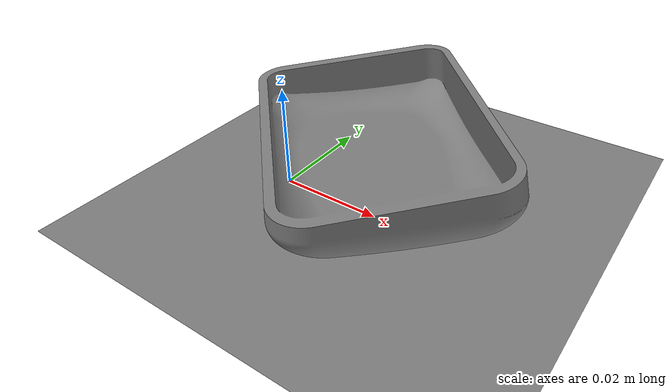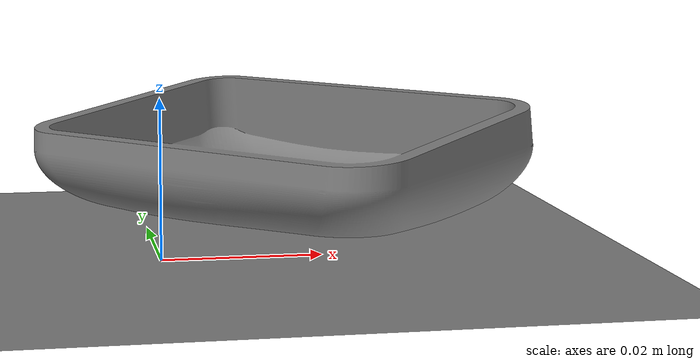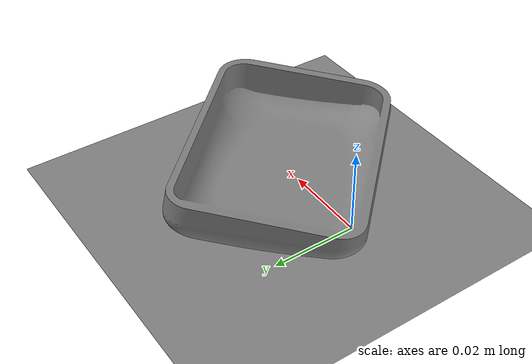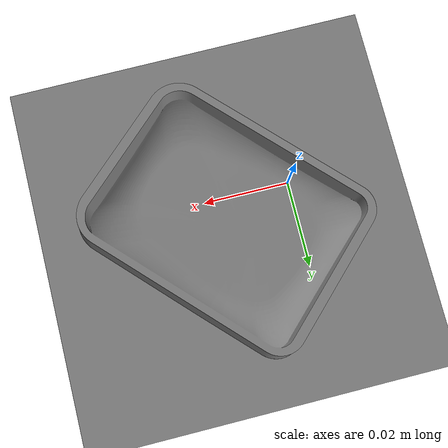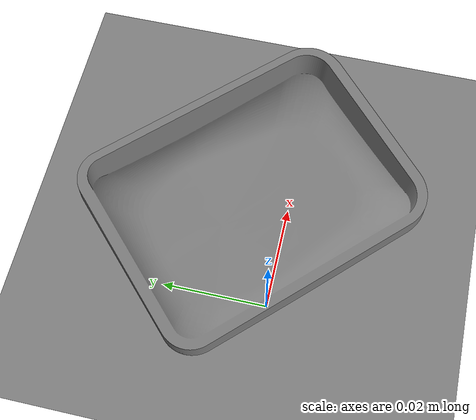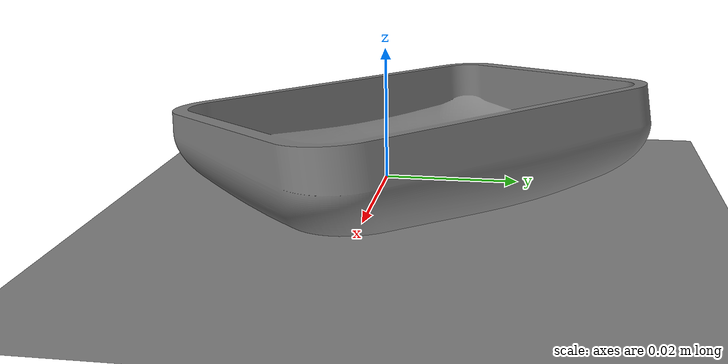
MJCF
<mujoco model="v65_v62_right_guided_ankle_drop"><compiler angle="radian" inertiafromgeom="false" /><option timestep=".005" gravity="0 0 -9.8100000000000005" integrator="Euler" solver="Newton" cone="pyramidal" iterations="100" tolerance="1e-08" ls_iterations="50" ls_tolerance="0.01" ccd_iterations="35" ccd_tolerance="1e-06" /><asset><mesh name="sole_mesh" file="/Users/kelly/Developer/microduck-rl-genesis/experiments/walking/upstream-audit-v56/sources/src/mjlab_microduck/robot/microduck/assets/sole_right.stl" /></asset><worldbody><geom name="floor" type="plane" size="0 0 .05" pos="0 0 0" contype="1" conaffinity="1" solref="0.02 1" solimp="0.90000000000000002 0.94999999999999996 0.001 0.5 2" friction="1 0.0050000000000000001 0.0001" priority="0" solmix="1" condim="3" margin="0" gap="0" /><body name="ankle_load" pos="0 0 0.027550422080211783"><joint name="vertical_guide" type="slide" axis="0 0 1" limited="false" damping="0" frictionloss="0" armature="0" /><inertial mass="0.030025099999999999" pos="0.01633697771816443 0.0072860494989961501 -0.012330758070227318" quat="0.25051425388192455 0.64334058383469783 -0.3282854601658135 0.64465817177550355" diaginertia="1.1162245904558893e-05 7.7432160942050624e-06 5.9034380012360302e-06" /><geom name="sole" type="mesh" mesh="sole_mesh" pos="0.061174519678470547 0.028745414672960386 0.011840349921183281" quat="0.9257661830390348 0.016404052294012775 -0.040435377964071456 0.37557004888379175" contype="1" conaffinity="1" solref="0.02 1" solimp="0.90000000000000002 0.94999999999999996 0.001 0.5 2" friction="1 0.0050000000000000001 0.0001" priority="0" solmix="1" condim="3" margin="0" gap="0" /></body></worldbody></mujoco>
